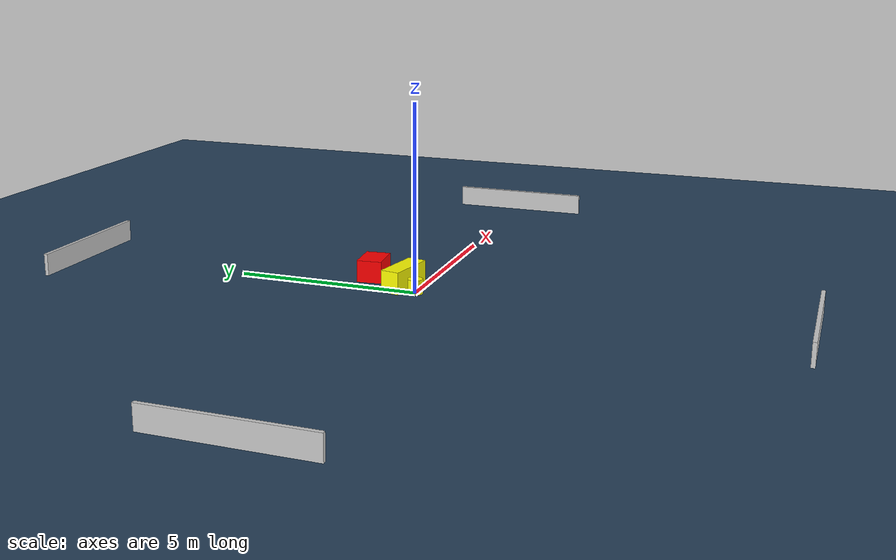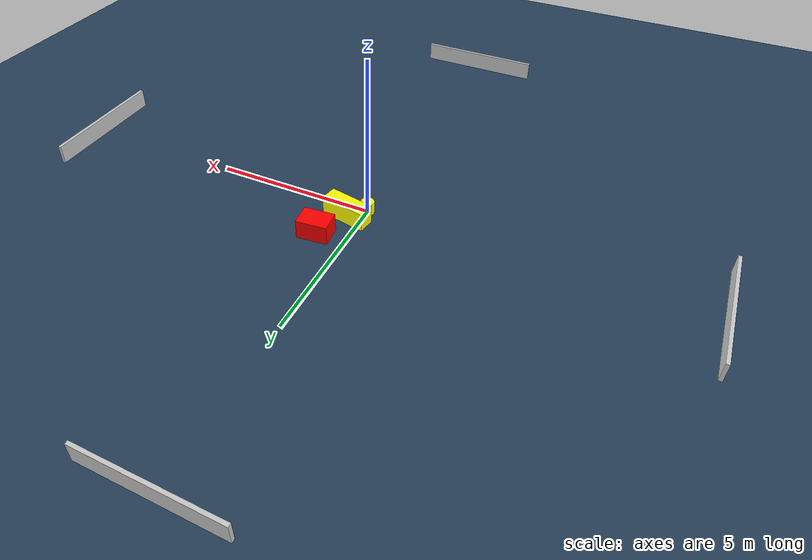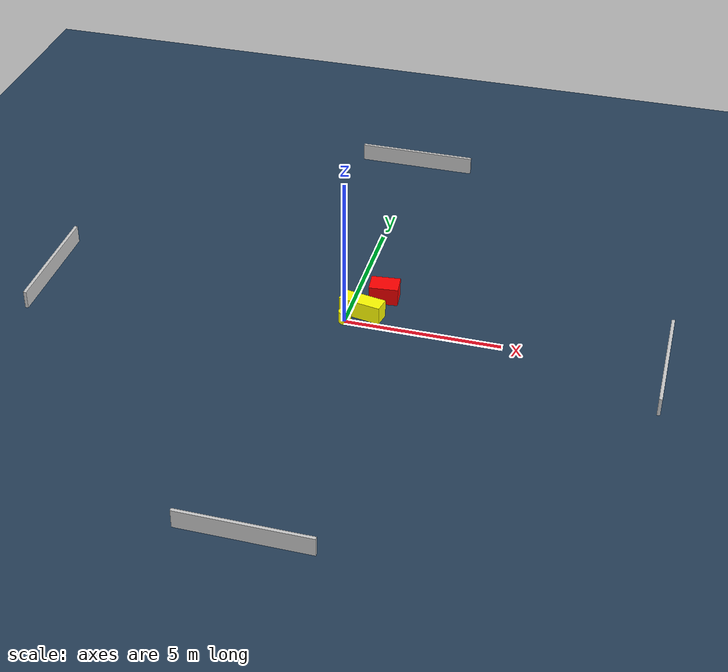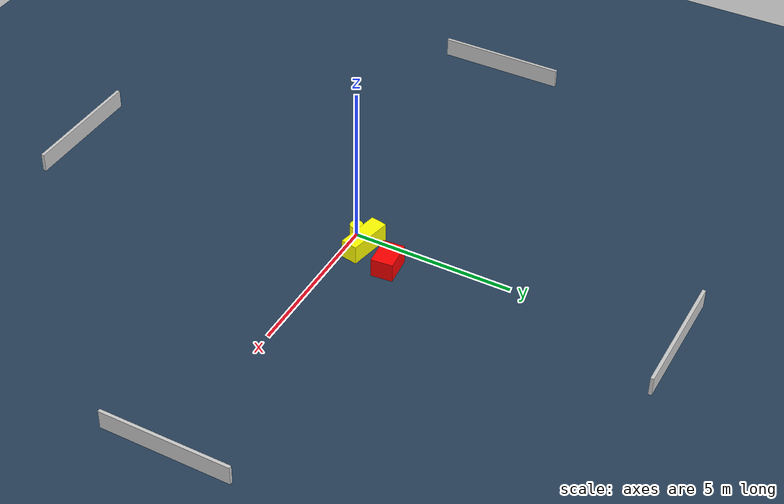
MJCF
<?xml version="1.0" ?>
<mujoco model="generated_environment">
  <option timestep="0.01" integrator="RK4" cone="elliptic"/>
  <default>
    <geom density="1"/>
  </default>
  <asset>
    <texture builtin="gradient" height="3072" name="skybox" rgb1="0.3 0.5 0.7" rgb2="0 0 0" type="skybox" width="512"/>
    <texture builtin="checker" height="300" name="groundplane" rgb1="0.2 0.3 0.4" rgb2="0.1 0.2 0.3" type="2d" width="300"/>
    <material name="groundplane" reflectance="0.2" texrepeat="5 5" texture="groundplane"/>
  </asset>
  <worldbody>
    <light dir="0 0 -1" directional="true" pos="0 0 1.5"/>
    <geom condim="3" friction="0.5 0.005 0.001" material="groundplane" name="floor" pos="0 0 0" size="0 0 0.05" type="plane"/>
    <body name="walls">
      <geom name="wall_1" condim="4" pos="-10.0 0.0 0.3" rgba="0.800000011920929 0.800000011920929 0.800000011920929 1.0" size="0.05 2.0 0.3" type="box"/>
      <geom name="wall_2" condim="4" pos="10.0 0.0 0.3" rgba="0.800000011920929 0.800000011920929 0.800000011920929 1.0" size="0.05 2.0 0.3" type="box"/>
      <geom name="wall_3" condim="4" pos="0.0 -10.0 0.3" rgba="0.800000011920929 0.800000011920929 0.800000011920929 1.0" size="2.0 0.05 0.3" type="box"/>
      <geom name="wall_4" condim="4" pos="0.0 10.0 0.3" rgba="0.800000011920929 0.800000011920929 0.800000011920929 1.0" size="2.0 0.05 0.3" type="box"/>
    </body>
    <body name="robot">
      <joint name="joint_x" type="slide" pos="0 0 0" axis="1 0 0"/>
      <joint name="joint_y" type="slide" pos="0 0 0" axis="0 1 0"/>
      <geom name="robot" type="cylinder" pos="0.0 0.0 0.2" size="0.2 0.2 0.0" mass="5.0" friction="1.0 0.005 0.0001" condim="4" rgba="1.0 1.0 0.0 1.0"/>
    </body>
    <body name="obstacle_1_movable">
      <geom name="obstacle_1_movable" condim="4" pos="0.43118273743841556 0.4909775871558594 0.3" euler="0 0 349.47144774059484" friction="0.0 0.005 0.001" rgba="1.0 1.0 0.0 1.0" size="0.6959782212931487 0.2563526533445795 0.3" type="box" mass="0.1"/>
      <joint type="free"/>
    </body>
    <body name="obstacle_2_static">
      <geom name="obstacle_2_static" condim="4" pos="0.9025054381686088 1.5308177986036644 0.3" euler="0 0 95.78228594532268" friction="0.0 0.005 0.001" rgba="1.0 0.0 0.0 1.0" size="0.3350680611006671 0.4699869265006566 0.3" type="box"/>
    </body>
  </worldbody>
  <actuator>
    <motor name="actuator_x" joint="joint_x" gear="1" ctrlrange="-1 1"/>
    <motor name="actuator_y" joint="joint_y" gear="1" ctrlrange="-1 1"/>
  </actuator>
</mujoco>
